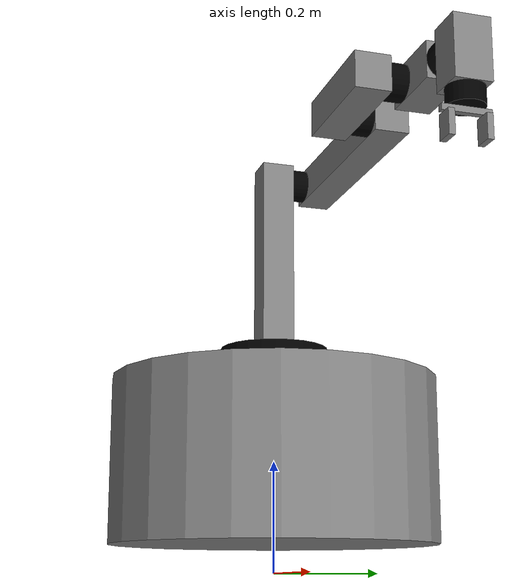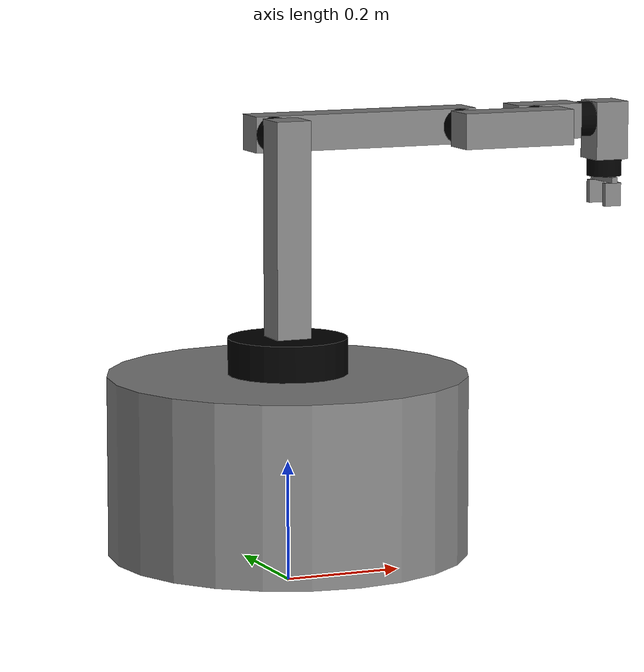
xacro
<?xml version="1.0"?>
<robot name="manipulator_6dof" xmlns:xacro="http://ros.org/wiki/xacro">
  <xacro:include filename="$(find manipulator_6dof_description)/urdf/constants.xacro" />
  <xacro:include filename="$(find manipulator_6dof_description)/urdf/macros.xacro" />
  <xacro:include filename="$(find manipulator_6dof_description)/urdf/manipulator.xacro" />
  <xacro:include filename="$(find manipulator_6dof_description)/urdf/ros2_control.xacro" />

  <link name="world"/>
  <xacro:cylinder_link
    name="base_link"
    m="${base_link_mass}"
    hight="${base_link_hight}"
    radius="${base_link_radius}"
    xyz="0 0 0"
    rpy="0 0 0"
    color="grey" />

  <joint name="world_fixed" type="fixed">
    <origin xyz="0 0 ${offset_from_ground_to_base_link}" rpy="0 0 0"/>
    <parent link="world"/>
    <child link="base_link"/>
  </joint>

  <link name="gripper_right_mimic_link"/>
  <joint name="gripper_right_mimic" type="fixed">
    <origin xyz="0 0 0" rpy="0 0 0"/>
    <parent link="world"/>
    <child link="gripper_right_mimic_link"/>
  </joint>

</robot>

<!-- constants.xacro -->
<robot xmlns:xacro="http://www.ros.org/wiki/xacro">
  <xacro:property name="joint_offest" value="0.01" />
  <xacro:property name="base_link_hight" value="0.3" />
  <xacro:property name="base_link_radius" value="0.3" />
  <xacro:property name="base_link_mass" value="0.5" />
  <xacro:property name="offset_from_ground_to_base_link" value="${base_link_hight/2 + 0.05}" />
  <xacro:property name="offset_from_base_link_link1" value="${base_link_hight/2 + joint_offest}" />
  <xacro:property name="manipualtor_conectors_hight" value="0.03" />
  <xacro:property name="manipualtor_conectors_radius" value="0.03" />
  <xacro:property name="manipualtor_conectors_mass" value="0.3" />

  <xacro:property name="link1_mass" value="2" />
  <xacro:property name="link1_radius" value="0.1" />
  <xacro:property name="link1_hight" value="0.1" />

  <xacro:property name="link2_mass" value="1" />
  <xacro:property name="link2_depth" value="0.06" />
  <xacro:property name="link2_width" value="0.06" />
  <xacro:property name="link2_hight" value="0.4" />

  <xacro:property name="link4_mass" value="1" />
  <xacro:property name="link4_depth" value="0.4" />
  <xacro:property name="link4_width" value="0.06" />
  <xacro:property name="link4_hight" value="0.06" />

  <xacro:property name="link6_mass" value="0.5" />
  <xacro:property name="link6_depth" value="0.2" />
  <xacro:property name="link6_width" value="0.06" />
  <xacro:property name="link6_hight" value="0.06" />

  <xacro:property name="link8_mass" value="0.3" />
  <xacro:property name="link8_depth" value="0.12" />
  <xacro:property name="link8_width" value="0.06" />
  <xacro:property name="link8_hight" value="0.06" />

  <xacro:property name="link10_mass" value="0.2" />
  <xacro:property name="link10_depth" value="0.06" />
  <xacro:property name="link10_width" value="0.1" />
  <xacro:property name="link10_hight" value="0.06" />

  <xacro:property name="link12_mass" value="0.1" />
  <xacro:property name="link12_depth" value="0.01" />
  <xacro:property name="link12_width" value="0.08" />
  <xacro:property name="link12_hight" value="0.01" />

  <xacro:property name="gripper_mass" value="0.1" />
  <xacro:property name="gripper_depth" value="0.03" />
  <xacro:property name="gripper_width" value="0.01" />
  <xacro:property name="gripper_hight" value="0.04" />
  <xacro:property name="gripper_offset" value="0.03" />
</robot>

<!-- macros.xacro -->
<robot xmlns:xacro="http://www.ros.org/wiki/xacro">
  <material name="grey">
    <color rgba="0.5 0.5 0.5 1.0"/>
  </material>
  <material name="black">
    <color rgba="0 0 0 1.0"/>
  </material>
  <xacro:macro name="cylinder_inertia" params="m r h xyz rpy">
    <inertial>
      <origin xyz="${xyz}" rpy="${rpy}"/>
      <mass value="${m}"/>
      <inertia  ixx="${m*(3*r*r+h*h)/12}" ixy = "0" ixz = "0"
                iyy="${m*(3*r*r+h*h)/12}" iyz = "0"
                izz="${m*r*r/2}"/>
    </inertial>
  </xacro:macro>

  <xacro:macro name="cuboid_inertia" params="m d w h xyz rpy">
    <inertial>
      <origin xyz="${xyz}" rpy="${rpy}"/>
      <mass value="${m}"/>
      <inertia  ixx="${(m/12) * (h*h + d*d)}" ixy="0.0" ixz="0.0"
                iyy="${(m/12) * (w*w + d*d)}" iyz="0.0"
                izz="${(m/12) * (w*w + h*h)}"/>
    </inertial>
  </xacro:macro>

  <xacro:macro name="cuboid_link" params="name m x y z xyz rpy">
    <xacro:cuboid_inertia m="${m}" d="${x}" w="${y}" h="${z}" xyz="0 0 0" rpy="0 0 0"/>
    <link name="${name}">
      <visual>
        <origin xyz="${xyz}" rpy="${rpy}" />
        <geometry>
          <box size="${x} ${y} ${z}" />
        </geometry>
        <material name="grey" />
      </visual>
      <collision>
        <geometry>
          <box size="${x} ${y} ${z}" />
        </geometry>
      </collision>
    </link>
  </xacro:macro>

  <xacro:macro name="cylinder_link" params="name m hight radius xyz rpy color:=black">
    <xacro:cylinder_inertia m="${m}" r="${radius}" h="${hight}" xyz="0 0 0" rpy="0 0 0"/>
    <link name="${name}">
      <visual>
        <origin xyz="${xyz}" rpy="${rpy}" />
        <geometry>
          <cylinder length="${radius}" radius="${radius}" />
        </geometry>
        <material name="${color}" />
      </visual>
      <collision>
        <origin xyz="${xyz}" rpy="${rpy}" />
        <geometry>
          <cylinder length="${radius}" radius="${radius}" />
        </geometry>
      </collision>
    </link>
  </xacro:macro>

</robot>

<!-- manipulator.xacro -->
<robot xmlns:xacro="http://www.ros.org/wiki/xacro">
  <xacro:macro name="manipualtor_conectors" params="name r:=${pi/2} p:=0 y:=0">
    <xacro:cylinder_link
      name="${name}"
      m="${manipualtor_conectors_mass}"
      hight="${manipualtor_conectors_hight}"
      radius="${manipualtor_conectors_radius}"
      xyz="0 0 0"
      rpy="${r} ${p} ${y}" />
  </xacro:macro>

  <xacro:cylinder_link
    name="link1"
    m="${link1_mass}"
    hight="${link1_hight}"
    radius="${link1_radius}"
    xyz="0 0 0"
    rpy="0 0 0" />

  <joint name="based_fixed" type="fixed">
    <origin xyz="0 0 ${offset_from_base_link_link1}" rpy="0 0 0"/>
    <parent link="base_link"/>
    <child link="link1"/>
  </joint>

  <xacro:cuboid_link
    name="link2"
    m="${link2_mass}"
    x="${link2_depth}"
    y="${link2_width}"
    z="${link2_hight}"
    xyz="0 0 0"
    rpy="0 0 0" />

  <joint name="joint1" type="revolute">
    <parent link="link1"/>
    <child link="link2"/>
    <origin xyz="0 0 ${link2_hight/2 + joint_offest}" rpy="0 0 0"/>
    <axis xyz="0 0 1"/>
    <limit velocity="0" effort="0" lower="${-2.0*pi}" upper="${2.0*pi}" />
  </joint>

  <xacro:manipualtor_conectors name="link3" />

  <joint name="joint2" type="revolute">
    <origin
      xyz="0 ${link2_width/2 + manipualtor_conectors_hight/2} ${link2_hight/2 - manipualtor_conectors_radius}"
      rpy="0 0 0"/>
    <parent link="link2"/>
    <child link="link3"/>
    <axis xyz="0 1 0"/>
    <limit velocity="0" effort="0" lower="${-2.0*pi}" upper="${2.0*pi}" />
  </joint>

  <xacro:cuboid_link
    name="link4"
    m="${link4_mass}"
    x="${link4_depth}"
    y="${link4_width}"
    z="${link4_hight}"
    xyz="0 0 0"
    rpy="0 0 0" />

  <joint name="joint3" type="fixed">
    <origin
      xyz="${link4_depth/2 - manipualtor_conectors_radius} ${link4_width/2 + manipualtor_conectors_hight/2} 0"
      rpy="0 0 0"/>
    <parent link="link3"/>
    <child link="link4"/>
  </joint>

  <xacro:manipualtor_conectors name="link5" />

  <joint name="joint4" type="revolute">
    <origin
      xyz="${link4_depth/2 - manipualtor_conectors_radius} -${manipualtor_conectors_hight + manipualtor_conectors_hight/2} 0"
      rpy="0 0 0" />
    <parent link="link4"/>
    <child link="link5"/>
    <axis xyz="0 1 0"/>
    <limit velocity="0" effort="0" lower="${-2.0*pi}" upper="${2.0*pi}" />
  </joint>

  <xacro:cuboid_link name="link6" m="${link6_mass}" x="${link6_depth}" y="${link6_width}" z="${link6_hight}" xyz="0 0 0" rpy="0 0 0" />

  <joint name="joint5" type="fixed">
    <origin
      xyz="${link6_depth/2 - manipualtor_conectors_radius} -${link6_width/2 + manipualtor_conectors_hight/2} 0"
      rpy="0 0 0"/>
    <parent link="link5"/>
    <child link="link6"/>
  </joint>

  <xacro:manipualtor_conectors name="link7" />

  <joint name="joint6" type="revolute">
    <origin
      xyz="${link6_depth/2 - manipualtor_conectors_radius} ${link6_width/2 + manipualtor_conectors_hight/2} 0"
      rpy="0 0 0" />
    <parent link="link6" />
    <child link="link7" />
    <axis xyz="0 1 0" />
    <limit velocity="0" effort="0" lower="${-2.0*pi}" upper="${2.0*pi}" />
  </joint>

  <xacro:cuboid_link
    name="link8"
    m="${link8_mass}"
    x="${link8_depth}"
    y="${link8_width}"
    z="${link8_hight}"
    xyz="0 0 0"
    rpy="0 0 0" />

  <joint name="joint7" type="fixed">
    <origin
      xyz="${manipualtor_conectors_hight} ${link8_width/2 + manipualtor_conectors_radius/2} 0"
      rpy="0 0 0" />
    <parent link="link7" />
    <child link="link8" />
  </joint>

  <xacro:manipualtor_conectors name="link9" p="${pi/2}" r="0"/>

  <joint name="joint8" type="revolute">
    <origin xyz="${link8_depth/2 + manipualtor_conectors_hight/2} 0 0" rpy="0 0 0"/>
    <parent link="link8"/>
    <child link="link9"/>
    <axis xyz="1 0 0"/>
    <limit velocity="0" effort="0" lower="${-2.0*pi}" upper="${2.0*pi}" />
  </joint>

  <xacro:cuboid_link
    name="link10"
    m="${link10_mass}"
    x="${link10_depth}"
    y="${link10_width}"
    z="${link10_hight}"
    xyz="0 0 0"
    rpy="${pi/2} 0 0" />

  <joint name="joint9" type="fixed">
    <origin
      xyz="${link10_depth/2 + manipualtor_conectors_hight/2} 0 -${link10_width/2 - manipualtor_conectors_radius}"
      rpy="0 0 0" />
    <parent link="link9" />
    <child link="link10" />
  </joint>

  <xacro:manipualtor_conectors name="link11" r="0"/>

  <joint name="joint10" type="revolute">
    <origin xyz="0 0 -${manipualtor_conectors_hight/2 + link10_width/2}" rpy="0 0 0"/>
    <parent link="link10"/>
    <child link="link11"/>
    <axis xyz="0 0 1"/>
    <limit velocity="0" effort="0" lower="${-2.0*pi}" upper="${2.0*pi}" />
  </joint>

  <xacro:cuboid_link
    name="link12"
    m="${link12_mass}"
    x="${link12_depth}"
    y="${link12_width}"
    z="${link12_hight}"
    xyz="0 0 0"
    rpy="0 0 0" />

  <joint name="joint11" type="fixed">
    <origin xyz="0 0 -${link10_width/2 - manipualtor_conectors_radius}" rpy="0 0 0"/>
    <parent link="link11"/>
    <child link="link12"/>
  </joint>

  <xacro:cuboid_link
    name="gripper_left"
    m="${gripper_mass}"
    x="${gripper_depth}"
    y="${gripper_width}"
    z="${gripper_hight}"
    xyz="0 0 0"
    rpy="0 0 0" />

  <xacro:cuboid_link
    name="gripper_right"
    m="${gripper_mass}"
    x="${gripper_depth}"
    y="${gripper_width}"
    z="${gripper_hight}"
    xyz="0 0 0"
    rpy="0 0 0" />

  <joint name="joint12" type="prismatic">
    <origin xyz="0 ${gripper_offset} -${gripper_hight/2 + link12_hight/2}" rpy="0 0 0"/>
    <parent link="link12"/>
    <child link="gripper_left"/>
    <axis xyz="0 1 0"/>
    <limit velocity="0" effort="0" lower="-0.025" upper="0.005" />
  </joint>

  <joint name="joint13" type="prismatic">
    <origin xyz="0 -${gripper_offset} -${gripper_hight/2 + link12_hight/2}" rpy="0 0 0" />
    <parent link="link12" />
    <child link="gripper_right" />
    <axis xyz="0 1 0" />
    <limit velocity="0" effort="0" lower="-0.025" upper="0.005" />
    <mimic joint="joint12" multiplier="-1"/>
  </joint>

  <link name="end_efector_link" />
  <joint name="end_efector" type="fixed">
    <parent link="link12"/>
    <child link="end_efector_link"/>
    <origin xyz="0 0 -${gripper_hight/2 + link12_hight/2}" rpy="0 0 0"/>
  </joint>
</robot>
